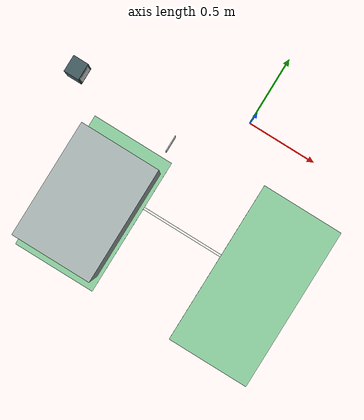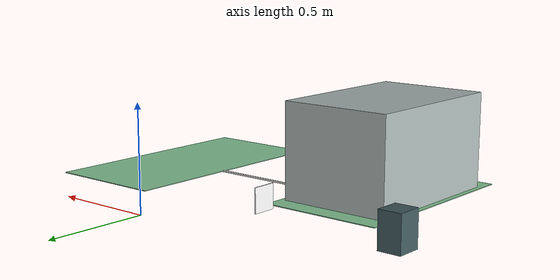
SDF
<sdf version="1.6">
 <world name="sq_community_4p2">
  <include><uri>model://sun</uri></include>
  <model name="sq4_zone_building_C">
   <static>true</static>
   <pose>0.6000 -0.9000 0.0000 0 0 0.00000</pose>
   <link name="surface">
    <visual name="surface_vis">
     <pose>0.0000 0.0000 0.0018 0 0 0.00000</pose>
     <geometry><box><size>0.6000 1.2000 0.0035</size></box></geometry>
     <material>
      <ambient>0.5500 0.8200 0.6200 1.0000</ambient>
      <diffuse>0.5500 0.8200 0.6200 1.0000</diffuse>
     </material>
    </visual>
   </link>
  </model>
  <model name="sq4_zone_station">
   <static>true</static>
   <pose>-0.6000 -1.0000 0.0000 0 0 0.00000</pose>
   <link name="surface">
    <visual name="surface_vis">
     <pose>0.0000 0.0000 0.0018 0 0 0.00000</pose>
     <geometry><box><size>0.6000 1.0000 0.0035</size></box></geometry>
     <material>
      <ambient>0.5500 0.8200 0.6200 1.0000</ambient>
      <diffuse>0.5500 0.8200 0.6200 1.0000</diffuse>
     </material>
    </visual>
   </link>
  </model>
  <model name="sq4_stop_lower">
   <static>true</static>
   <pose>0.0000 -0.8500 0.0000 0 0 0.00000</pose>
   <link name="surface">
    <visual name="surface_vis">
     <pose>0.0000 0.0000 0.0030 0 0 0.00000</pose>
     <geometry><box><size>0.6000 0.0160 0.0060</size></box></geometry>
     <material>
      <ambient>0.9800 0.9800 0.9600 1.0000</ambient>
      <diffuse>0.9800 0.9800 0.9600 1.0000</diffuse>
     </material>
    </visual>
   </link>
  </model>
  <model name="sq4_station">
   <static>true</static>
   <pose>-0.6000 -1.0000 0.0000 0 0 0.00000</pose>
   <link name="structure">
    <visual name="structure_vis">
     <pose>0.0000 0.0000 0.2350 0 0 0.00000</pose>
     <geometry><box><size>0.5500 0.8000 0.4700</size></box></geometry>
     <material>
      <ambient>0.6800 0.7300 0.7200 1.0000</ambient>
      <diffuse>0.6800 0.7300 0.7200 1.0000</diffuse>
     </material>
    </visual>
    <collision name="structure_col">
     <pose>0.0000 0.0000 0.2350 0 0 0.00000</pose>
     <geometry><box><size>0.5500 0.8000 0.4700</size></box></geometry>
    </collision>
   </link>
   <link name="station_name">
    <visual name="station_name_vis">
     <pose>0.0000 -0.4050 0.3400 0 0 -1.57080</pose>
     <geometry><box><size>0.0060 0.2400 0.0900</size></box></geometry>
     <material>
      <script>
       <uri>model://sq_textures/materials/scripts</uri>
       <uri>model://sq_textures/materials/textures</uri>
       <name>SQ_station_plate</name>
      </script>
      <ambient>1 1 1 1</ambient>
      <diffuse>1 1 1 1</diffuse>
     </material>
    </visual>
   </link>
   <link name="gauge_1">
    <visual name="gauge_1_vis">
     <pose>-0.1200 -0.4090 0.2200 0 0 -1.57080</pose>
     <geometry><box><size>0.0060 0.1200 0.0900</size></box></geometry>
     <material>
      <script>
       <uri>model://sq_textures/materials/scripts</uri>
       <uri>model://sq_textures/materials/textures</uri>
       <name>SQ_gauge_1</name>
      </script>
      <ambient>1 1 1 1</ambient>
      <diffuse>1 1 1 1</diffuse>
     </material>
    </visual>
   </link>
   <link name="gauge_2">
    <visual name="gauge_2_vis">
     <pose>0.1200 -0.4090 0.2200 0 0 -1.57080</pose>
     <geometry><box><size>0.0060 0.1200 0.0900</size></box></geometry>
     <material>
      <script>
       <uri>model://sq_textures/materials/scripts</uri>
       <uri>model://sq_textures/materials/textures</uri>
       <name>SQ_gauge_2</name>
      </script>
      <ambient>1 1 1 1</ambient>
      <diffuse>1 1 1 1</diffuse>
     </material>
    </visual>
   </link>
  </model>
  <model name="sq4_bin_recycle">
   <static>true</static>
   <pose>-1.1400 -0.3100 0.0000 0 0 0.00000</pose>
   <link name="body">
    <visual name="body_vis">
     <pose>0.0000 0.0000 0.0850 0 0 0.00000</pose>
     <geometry><box><size>0.1100 0.1200 0.1700</size></box></geometry>
     <material>
      <ambient>0.2600 0.3600 0.3800 1.0000</ambient>
      <diffuse>0.2600 0.3600 0.3800 1.0000</diffuse>
     </material>
    </visual>
    <collision name="body_col">
     <pose>0.0000 0.0000 0.0850 0 0 0.00000</pose>
     <geometry><box><size>0.1100 0.1200 0.1700</size></box></geometry>
    </collision>
   </link>
   <link name="front">
    <visual name="front_vis">
     <pose>0.0570 0.0000 0.0850 0 0 0.00000</pose>
     <geometry><box><size>0.0030 0.1000 0.1200</size></box></geometry>
     <material>
      <script>
       <uri>model://sq_textures/materials/scripts</uri>
       <uri>model://sq_textures/materials/textures</uri>
       <name>SQ_bin_recycle</name>
      </script>
      <ambient>1 1 1 1</ambient>
      <diffuse>1 1 1 1</diffuse>
     </material>
    </visual>
   </link>
  </model>
  <model name="sq4_sign_no_entry">
   <static>true</static>
   <pose>-0.3700 -0.4000 0.0000 0 0 0.00000</pose>
   <link name="panel">
    <visual name="panel_vis">
     <pose>0.0000 0.0000 0.0600 0 0 0.00000</pose>
     <geometry><box><size>0.0050 0.1200 0.1200</size></box></geometry>
     <material>
      <script>
       <uri>model://sq_textures/materials/scripts</uri>
       <uri>model://sq_textures/materials/textures</uri>
       <name>SQ_sign_no_entry</name>
      </script>
      <ambient>1 1 1 1</ambient>
      <diffuse>1 1 1 1</diffuse>
     </material>
    </visual>
   </link>
  </model>
 </world>
</sdf>
